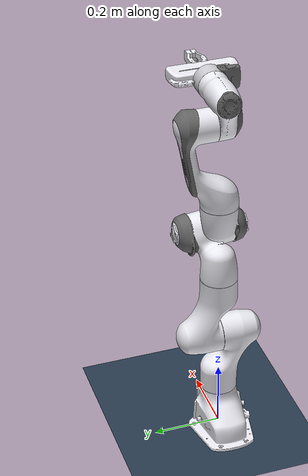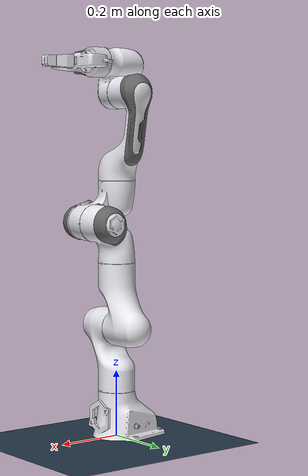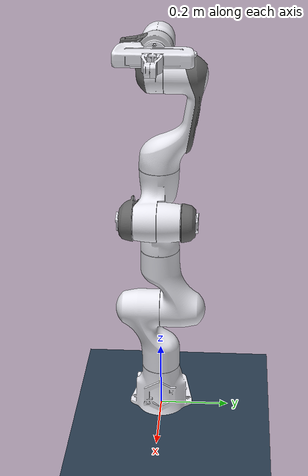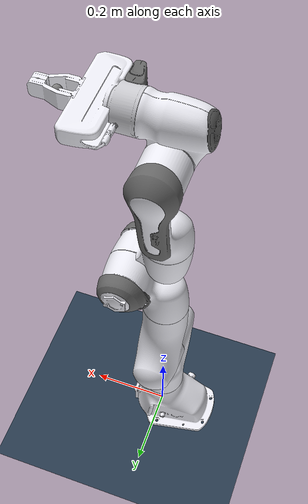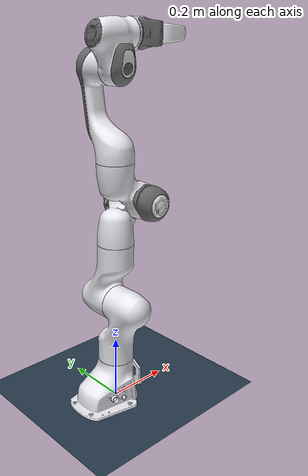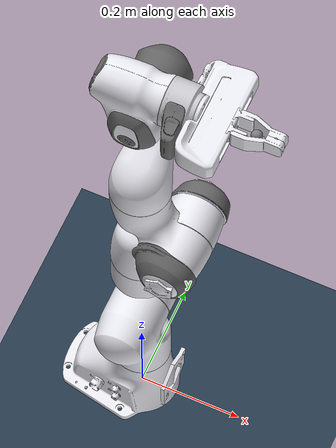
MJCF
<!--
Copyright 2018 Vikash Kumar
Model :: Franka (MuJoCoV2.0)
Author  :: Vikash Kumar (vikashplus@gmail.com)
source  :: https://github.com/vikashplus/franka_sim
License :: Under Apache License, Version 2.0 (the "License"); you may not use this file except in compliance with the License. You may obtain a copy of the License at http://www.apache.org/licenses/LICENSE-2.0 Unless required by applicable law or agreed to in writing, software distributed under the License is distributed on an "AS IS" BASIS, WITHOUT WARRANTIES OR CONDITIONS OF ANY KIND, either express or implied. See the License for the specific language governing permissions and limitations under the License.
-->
<mujoco model="franka_panda v200">

    <include file="assets/basic_scene.xml"/>
    <include file="assets/assets.xml"/>
    <include file="assets/gripper_assets.xml"/>
    <compiler meshdir=""/>

    <worldbody>

    <body name="panda0_link0" childclass="panda" >
        <geom class="panda_viz" mesh="link0_viz"/>
        <geom class="panda_col" mesh="link0_col" mass="2.91242"/>
        <body name="panda0_link1" pos="0 0 0.333">
            <joint name="panda0_joint1" range="-2.8973 2.8973" class="panda_arm"/>
            <geom class="panda_viz" mesh="link1_viz"/>
            <geom class="panda_col" mesh="link1_col" mass="2.7063"/>
            <body name="panda0_link2" pos="0 0 0" quat="0.707107 -0.707107 0 0">
                <joint name="panda0_joint2" range="-1.7628 1.7628" class="panda_arm"/>
                <geom class="panda_viz" mesh="link2_viz"/>
                <geom class="panda_col" mesh="link2_col" mass="2.73046"/>
                <body name="panda0_link3" pos="0 -0.316 0" quat="0.707107 0.707107 0 0">
                    <joint name="panda0_joint3" range="-2.8973 2.8973" class="panda_arm"/>
                    <geom class="panda_viz" mesh="link3_viz"/>
                    <geom class="panda_grey_viz" mesh="link3_dark_viz" pos="0 .001 0"/>
                    <geom class="panda_col" mesh="link3_col" mass="2.04104"/>
                    <body name="panda0_link4" pos="0.0825 0 0" quat="0.707107 0.707107 0 0">
                        <joint name="panda0_joint4" range="-3.0718 -0.4" class="panda_arm"/>
                        <geom class="panda_viz" mesh="link4_viz"/>
                        <geom class="panda_grey_viz" mesh="link4_dark_viz"/>
                        <geom class="panda_col" mesh="link4_col" mass="2.08129"/>
                        <body name="panda0_link5" pos="-0.0825 0.384 0" quat="0.707107 -0.707107 0 0">
                            <joint name="panda0_joint5" range="-2.8973 2.8973" class="panda_forearm"/>
                            <geom class="panda_viz" mesh="link5_viz"/>
                            <geom class="panda_grey_viz" mesh="link5_dark_viz"/>
                            <geom class="panda_col" mesh="link5_col" mass="3.00049"/>
                            <body name="panda0_link6" pos="0 0 0" euler='1.57 0 1.57'>
                                <joint name="panda0_joint6" range="-1.6573 2.1127" class="panda_forearm"/>
                                <geom class="panda_viz" mesh="link6_viz"/>
                                <geom class="panda_grey_viz" mesh="link6_dark_viz"/>
                                <geom class="panda_col" mesh="link6_col" mass="1.3235"/>
                                <body name="panda0_link7" pos="0.088 0 0" euler='1.57 0 0.7854'>
                                    <joint name="panda0_joint7" range="-2.8973 2.8973" class="panda_forearm"/>
                                    <geom class="panda_viz" mesh="link7_viz" rgba=".8 .8 .82 1"/>
                                    <geom class="panda_grey_viz" mesh="link7_dark_viz" pos="0 0 -.0008"/>
                                    <geom class="panda_col" mesh="link7_col" mass="0.2"/>
                                    <camera name="Franka_wrist_cam" pos=".050 -.050 0.15" euler="2.95 0.2 -.787"/>
                                    <site name='end_effector' pos='0 0 .210' size='0.01' euler='0 0 -0.785398'/>

                                    <!-- End Effector -->
                                    <body name="panda0_gripper">
                                        <geom pos="0 0 0.107" quat="0.92388 0 0 -0.382683" class="panda_viz" mesh="hand_viz"/>
                                        <geom pos="0 0 0.107" quat="0.92388 0 0 -0.382683" class="panda_col" mesh="hand_col" mass="0.81909"/>

                                        <body name="panda0_leftfinger" pos="0 0 0.1654" quat="0.92388 0 0 -0.382683" childclass='panda_finger'>
                                            <inertial pos="-1.57863e-05 0.0118731 0.0434103" quat="0.705868 0.0310348 -0.0314925 0.706962" mass="0.0927059" diaginertia="6.57134e-05 6.09611e-05 1.09932e-05" />
                                            <joint name="panda0_finger_joint1"  axis="0 1 0" type="slide" range="0 0.04" class="panda_finger"/>
                                            <geom class="panda_viz" mesh="finger_viz"/>
                                            <geom size="0.0070" fromto=".009 .006 .0875   -.009 .009 .0875" type="capsule" />
                                            <geom size="0.0070" fromto=".009 .009 .0875   -.009 .006 .0875" type="capsule" />

                                            <geom size="0.0075" fromto=".009 .007 .0775   -.009 .010 .0775" type="capsule" />
                                            <geom size="0.0075" fromto=".009 .010 .0775   -.009 .007 .0775" type="capsule" />

                                            <geom size="0.0082" fromto=".009 .008 .0675   -.009 .011 .0675" type="capsule" />
                                            <geom size="0.0082" fromto=".009 .011 .0675   -.009 .008 .0675" type="capsule" />

                                            <geom size="0.0090" fromto=".009 .009 .0575   -.009 .012 .0575" type="capsule" />
                                            <geom size="0.0090" fromto=".009 .012 .0575   -.009 .009 .0575" type="capsule" />

                                            <geom size="0.0100" fromto=".009 .0105 .0475   -.009 .0135 .0475" type="capsule" />
                                            <geom size="0.0100" fromto=".009 .0135 .0475   -.009 .0105 .0475" type="capsule" />

                                            <geom size="0.0110" fromto=".009 .012 .035   -.009 .015 .035" type="capsule" />
                                            <geom size="0.0110" fromto=".009 .015 .035   -.009 .012 .035" type="capsule" />

                                            <geom size="0.0185 0.0120 0.0175" pos="0 0.014 0.015" type="box" euler='.03 0 0' />

                                        </body>
                                        <body name="panda0_rightfinger" pos="0 0 0.1654" quat="0.92388 0 0 -0.382683"  childclass='panda_finger'>
                                            <inertial pos="1.57863e-05 -0.0118731 0.0434103" quat="0.705868 -0.0310348 0.0314925 0.706962" mass="0.0927059" diaginertia="6.57134e-05 6.09611e-05 1.09932e-05" />
                                            <joint name="panda0_finger_joint2" axis="0 -1 0" type="slide" range="0 0.04" class="panda_finger"/>
                                            <geom quat="0 0 0 1" class="panda_viz" mesh="finger_viz"/>
                                            <geom size="0.0070" fromto=".009 -.006 .0875   -.009 -.009 .0875" type="capsule" />
                                            <geom size="0.0070" fromto=".009 -.009 .0875   -.009 -.006 .0875" type="capsule" />

                                            <geom size="0.0075" fromto=".009 -.007 .0775   -.009 -.010 .0775" type="capsule" />
                                            <geom size="0.0075" fromto=".009 -.010 .0775   -.009 -.007 .0775" type="capsule" />

                                            <geom size="0.0082" fromto=".009 -.008 .0675   -.009 -.011 .0675" type="capsule" />
                                            <geom size="0.0082" fromto=".009 -.011 .0675   -.009 -.008 .0675" type="capsule" />

                                            <geom size="0.0090" fromto=".009 -.009 .0575   -.009 -.012 .0575" type="capsule" />
                                            <geom size="0.0090" fromto=".009 -.012 .0575   -.009 -.009 .0575" type="capsule" />

                                            <geom size="0.0100" fromto=".009 -.0105 .0475   -.009 -.0135 .0475" type="capsule" />
                                            <geom size="0.0100" fromto=".009 -.0135 .0475   -.009 -.0105 .0475" type="capsule" />

                                            <geom size="0.0110" fromto=".009 -.012 .035   -.009 -.015 .035" type="capsule" />
                                            <geom size="0.0110" fromto=".009 -.015 .035   -.009 -.012 .035" type="capsule" />

                                            <geom size="0.0185 0.0120 0.0175" pos="0 -.014 0.015" type="box" euler='-.03 0 0' />
                                        </body>
                                    </body>

                                </body>
                            </body>
                        </body>
                    </body>
                </body>
            </body>
        </body>
    </body>
    </worldbody>

    <include file='assets/actuator0.xml'/>
    <include file='assets/gripper_actuator0.xml'/>

</mujoco>

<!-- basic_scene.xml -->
<mujocoinclude>

    <asset>
        <texture name="texplane" type="2d" builtin="checker" rgb1=".2 .3 .4" rgb2=".1 0.15 0.2"
                width="512" height="512"/>
        <material name="MatGnd" reflectance="0.5" texture="texplane" texrepeat="1 1" texuniform="true"/>
    </asset>

    <worldbody>
        <light directional="false" diffuse=".8 .8 .8" specular="0.3 0.3 0.3" pos="1  1 3" dir="-1 -1 -3"/>
        <light directional="false" diffuse=".8 .8 .8" specular="0.3 0.3 0.3" pos="1 -1 3" dir="-1 1 -3"/>
        <light directional="false" diffuse=".8 .8 .8" specular="0.3 0.3 0.3" pos="-1 0 3" dir="1 0 -3" />
        <geom name="ground" pos="0 0 0" size="5 5 10" material="MatGnd" type="plane" contype="1" conaffinity="1"/>
    </worldbody>
</mujocoinclude>

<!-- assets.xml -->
<mujocoinclude>

    <compiler angle="radian"/>
    <option timestep="0.002"/>
    <size nuser_actuator="5"/>

    <asset>
        <mesh name="link0_col" file="/home/zhouxian/git/Genesis-dev/genesis/assets/xml/franka_sim/meshes/collision/link0.stl"/>
        <mesh name="link1_col" file="/home/zhouxian/git/Genesis-dev/genesis/assets/xml/franka_sim/meshes/collision/link1.stl"/>
        <mesh name="link2_col" file="/home/zhouxian/git/Genesis-dev/genesis/assets/xml/franka_sim/meshes/collision/link2.stl"/>
        <mesh name="link3_col" file="/home/zhouxian/git/Genesis-dev/genesis/assets/xml/franka_sim/meshes/collision/link3.stl"/>
        <mesh name="link4_col" file="/home/zhouxian/git/Genesis-dev/genesis/assets/xml/franka_sim/meshes/collision/link4.stl"/>
        <mesh name="link5_col" file="/home/zhouxian/git/Genesis-dev/genesis/assets/xml/franka_sim/meshes/collision/link5.stl"/>
        <mesh name="link6_col" file="/home/zhouxian/git/Genesis-dev/genesis/assets/xml/franka_sim/meshes/collision/link6.stl"/>
        <mesh name="link7_col" file="/home/zhouxian/git/Genesis-dev/genesis/assets/xml/franka_sim/meshes/collision/link7.stl"/>
        <mesh name="hand_col" file="/home/zhouxian/git/Genesis-dev/genesis/assets/xml/franka_sim/meshes/collision/hand.stl"/>
        <mesh name="link0_viz" file="/home/zhouxian/git/Genesis-dev/genesis/assets/xml/franka_sim/meshes/visual/link0.stl"/>
        <mesh name="link1_viz" file="/home/zhouxian/git/Genesis-dev/genesis/assets/xml/franka_sim/meshes/visual/link1.stl"/>
        <mesh name="link2_viz" file="/home/zhouxian/git/Genesis-dev/genesis/assets/xml/franka_sim/meshes/visual/link2.stl"/>
        <mesh name="link3_viz" file="/home/zhouxian/git/Genesis-dev/genesis/assets/xml/franka_sim/meshes/visual/link3.stl"/>
        <mesh name="link3_dark_viz" file="/home/zhouxian/git/Genesis-dev/genesis/assets/xml/franka_sim/meshes/visual/link3_dark.stl" scale="1.01 1.01 1.01"/>
        <mesh name="link4_viz" file="/home/zhouxian/git/Genesis-dev/genesis/assets/xml/franka_sim/meshes/visual/link4.stl"/>
        <mesh name="link4_dark_viz" file="/home/zhouxian/git/Genesis-dev/genesis/assets/xml/franka_sim/meshes/visual/link4_dark.stl" scale="1.01 1.01 1.01"/>
        <mesh name="link5_viz" file="/home/zhouxian/git/Genesis-dev/genesis/assets/xml/franka_sim/meshes/visual/link5.stl"/>
        <mesh name="link5_dark_viz" file="/home/zhouxian/git/Genesis-dev/genesis/assets/xml/franka_sim/meshes/visual/link5_dark.stl" scale="1.01 1.01 1.01"/>
        <mesh name="link6_viz" file="/home/zhouxian/git/Genesis-dev/genesis/assets/xml/franka_sim/meshes/visual/link6.stl"/>
        <mesh name="link6_dark_viz" file="/home/zhouxian/git/Genesis-dev/genesis/assets/xml/franka_sim/meshes/visual/link6_dark.stl" scale="1.01 1.01 1.01"/>
        <mesh name="link7_viz" file="/home/zhouxian/git/Genesis-dev/genesis/assets/xml/franka_sim/meshes/visual/link7.stl"/>
        <mesh name="link7_dark_viz" file="/home/zhouxian/git/Genesis-dev/genesis/assets/xml/franka_sim/meshes/visual/link7_dark.stl" scale="1.01 1.01 1.01"/>
        <mesh name="hand_viz" file="/home/zhouxian/git/Genesis-dev/genesis/assets/xml/franka_sim/meshes/visual/hand.stl"/>
    </asset>

    <default>
        <default class="panda">
            <joint pos="0 0 0" axis="0 0 1" limited="true"/>
            <position forcelimited="true" ctrllimited="true" user="1002 40 2001 -0.005 0.005"/>
            <default class="panda_viz">
                <geom contype="0" conaffinity="0" group="0" type="mesh" rgba=".92 .92 .95 1"/>
            </default>
            <default class="panda_grey_viz">
                <geom contype="0" conaffinity="0" group="0" type="mesh" rgba=".4 .4 .4 1"/>
            </default>

            <default class="panda_col">
                <geom contype="1" conaffinity="1" group="3" type="mesh" rgba=".5 .6 .7 1"/>
            </default>
            <default class="panda_arm">
                <joint damping="100"/>
            </default>
             <default class="panda_forearm">
                <joint damping="10"/>
            </default>
             <default class="panda_finger">
                <joint damping="100" armature='5'/>
                <geom friction="1 0.5 0.0001" solref="0.01 1" solimp="0.8 0.9 0.001" margin="0.001" user="0" rgba="0.5 0.6 0.7 .4" contype="1" conaffinity="0" condim="6" group="3" />
                <position user="1002 40 2001 -0.0001 0.0001"/>
            </default>
        </default>

    </default>

    <sensor>
        <jointpos name="fr_arm_jp1" joint="panda0_joint1"/>
        <jointpos name="fr_arm_jp2" joint="panda0_joint2"/>
        <jointpos name="fr_arm_jp3" joint="panda0_joint3"/>
        <jointpos name="fr_arm_jp4" joint="panda0_joint4"/>
        <jointpos name="fr_arm_jp5" joint="panda0_joint5"/>
        <jointpos name="fr_arm_jp6" joint="panda0_joint6"/>
        <jointpos name="fr_arm_jp7" joint="panda0_joint7"/>
        <jointvel name="fr_arm_jv1" joint="panda0_joint1"/>
        <jointvel name="fr_arm_jv2" joint="panda0_joint2"/>
        <jointvel name="fr_arm_jv3" joint="panda0_joint3"/>
        <jointvel name="fr_arm_jv4" joint="panda0_joint4"/>
        <jointvel name="fr_arm_jv5" joint="panda0_joint5"/>
        <jointvel name="fr_arm_jv6" joint="panda0_joint6"/>
        <jointvel name="fr_arm_jv7" joint="panda0_joint7"/>
    </sensor>

</mujocoinclude>

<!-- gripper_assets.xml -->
<mujocoinclude>

    <asset>
        <mesh name="finger_col" file="/home/zhouxian/git/Genesis-dev/genesis/assets/xml/franka_sim/meshes/collision/finger.stl" scale='1.75 1.0 1.75'/>
        <mesh name="finger_viz" file="/home/zhouxian/git/Genesis-dev/genesis/assets/xml/franka_sim/meshes/collision/finger.stl" scale='1.75 1.0 1.75'/>
    </asset>

    <default>
        <default class="panda_overlay">
            <joint limited="false" damping="1000" armature="1" frictionloss="10"/>
            <geom contype="0" conaffinity="0" group="2" type="mesh" rgba=".42 0.42 0.42 .5"/>
        </default>
    </default>

    <sensor>
        <jointpos name="fr_fin_jp1" joint="panda0_finger_joint1"/>
        <jointpos name="fr_fin_jp2" joint="panda0_finger_joint2"/>
        <jointvel name="fr_fin_jv1" joint="panda0_finger_joint1"/>
        <jointvel name="fr_fin_jv2" joint="panda0_finger_joint2"/>
    </sensor>

</mujocoinclude>

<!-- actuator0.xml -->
<mujocoinclude>

    <actuator>
        <position name="panda0_joint1" joint="panda0_joint1" class="panda" kp="870" forcerange="-87 87" ctrlrange="-2.9671 2.9671"/> <!-- velocity="2.1750" -->
        <position name="panda0_joint2" joint="panda0_joint2" class="panda" kp="870" forcerange="-87 87" ctrlrange="-1.8326 1.8326"/> <!-- velocity="2.1750" -->
        <position name="panda0_joint3" joint="panda0_joint3" class="panda" kp="870" forcerange="-87 87" ctrlrange="-2.9671 2.9671"/> <!-- velocity="2.1750" -->
        <position name="panda0_joint4" joint="panda0_joint4" class="panda" kp="870" forcerange="-87 87" ctrlrange="-3.1416 0.0"/> <!-- velocity="2.1750" -->
        <position name="panda0_joint5" joint="panda0_joint5" class="panda" kp="120" forcerange="-12 12" ctrlrange="-2.9671 2.9671"/> <!-- velocity="2.6100" -->
        <position name="panda0_joint6" joint="panda0_joint6" class="panda" kp="120" forcerange="-12 12" ctrlrange="-1.66 2.1817"/> <!-- velocity="2.6100" -->
        <position name="panda0_joint7" joint="panda0_joint7" class="panda" kp="120" forcerange="-12 12" ctrlrange="-2.9671 2.9671"/> <!-- velocity="2.9671" -->
    </actuator>
</mujocoinclude>

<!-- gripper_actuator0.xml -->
<mujocoinclude>

    <actuator>
        <position name="r_gripper_finger_joint" joint="panda0_finger_joint1" class="panda_finger" kp="500" forcerange="-70 70" ctrlrange="0 0.04"/> velocity=".2"
        <position name="l_gripper_finger_joint" joint="panda0_finger_joint2" class="panda_finger" kp="500" forcerange="-70 70" ctrlrange="0 0.04"/> velocity=".2"
    </actuator>
</mujocoinclude>
